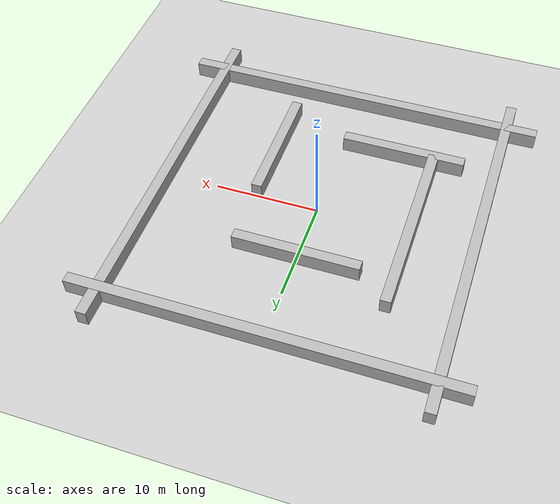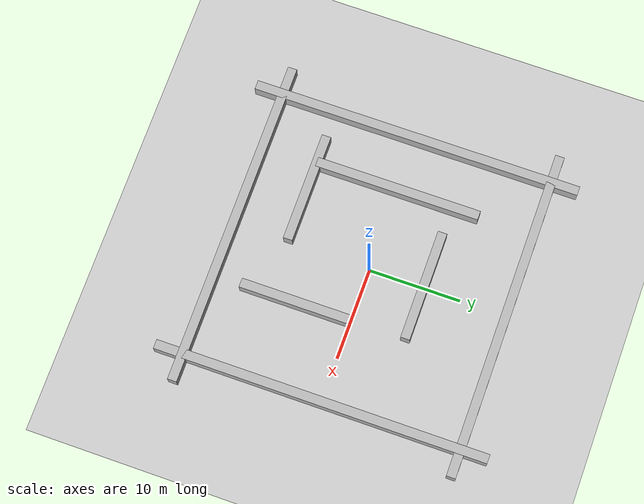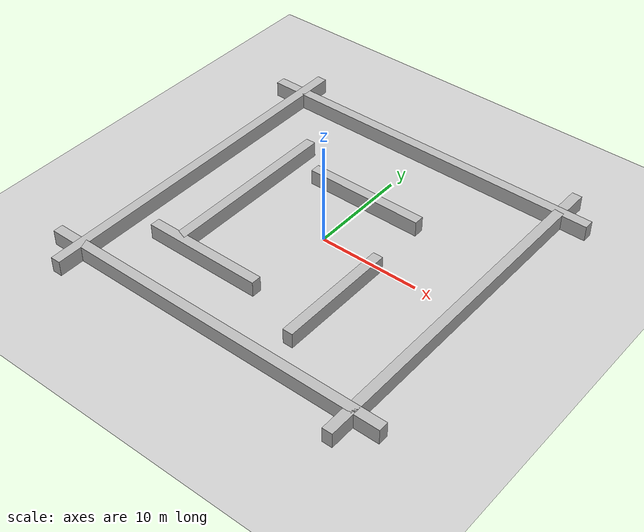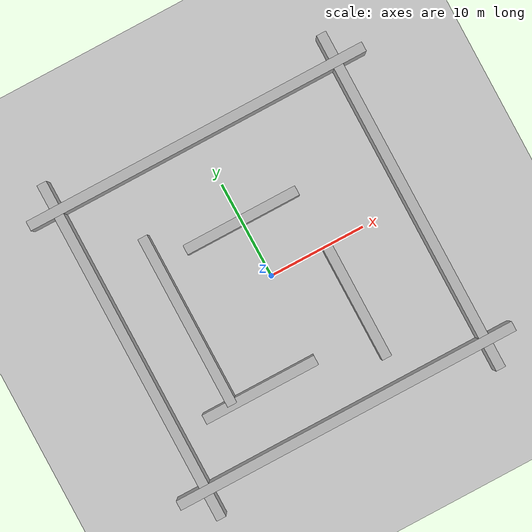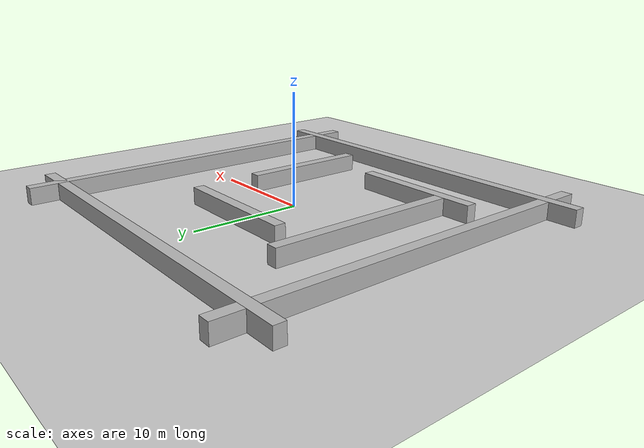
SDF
<sdf version="1.8">
 <world name="demo">
  <plugin filename="gz-sim-physics-system" name="gz::sim::systems::Physics"/>
  <plugin filename="gz-sim-sensors-system" name="gz::sim::systems::Sensors">
   <render_engine>ogre2</render_engine>
  </plugin>
  <plugin filename="gz-sim-scene-broadcaster-system" name="gz::sim::systems::SceneBroadcaster"/>
  <plugin filename="gz-sim-user-commands-system" name="gz::sim::systems::UserCommands"/>
  <plugin filename="BasicSystem" name="robot_gazebo::BasicSystem"/>
  <plugin filename="FullSystem" name="robot_gazebo::FullSystem"/>
  <light name="sun" type="directional">
   <pose>0 0 10 0 0 0</pose>
   <diffuse>0.8 0.8 0.8 1</diffuse>
   <specular>0.2 0.2 0.2 1</specular>
   <attenuation>
    <range>1000</range>
    <constant>0.9</constant>
    <linear>0.01</linear>
    <quadratic>0.001</quadratic>
   </attenuation>
   <direction>-0.5 0.1 -0.9</direction>
  </light>
  <model name="ground_plane">
   <static>true</static>
   <link name="link">
    <collision name="collision">
     <geometry><plane><normal>0 0 1</normal><size>100 100</size></plane></geometry>
    </collision>
    <visual name="visual">
     <geometry><plane><normal>0 0 1</normal><size>100 100</size></plane></geometry>
     <material>
      <ambient>0.8 0.8 0.8 1</ambient>
      <diffuse>0.8 0.8 0.8 1</diffuse>
      <specular>0.8 0.8 0.8 1</specular>
     </material>
    </visual>
   </link>
  </model>
  <model name="maze">
   <static>true</static>
   <link name="wall_north">
    <pose>0 15 0 0 0 0</pose>
    <visual name="wall_north_visual"><geometry><box><size>36 1 3</size></box></geometry></visual>
    <collision name="wall_north_collision"><geometry><box><size>36 1 3</size></box></geometry></collision>
   </link>
   <link name="wall_south">
    <pose>0 -15 0 0 0 0</pose>
    <visual name="wall_south_visual"><geometry><box><size>36 1 3</size></box></geometry></visual>
    <collision name="wall_south_collision"><geometry><box><size>36 1 3</size></box></geometry></collision>
   </link>
   <link name="wall_east">
    <pose>15 0 0 0 0 0</pose>
    <visual name="wall_east_visual"><geometry><box><size>1 36 3</size></box></geometry></visual>
    <collision name="wall_east_collision"><geometry><box><size>1 36 3</size></box></geometry></collision>
   </link>
   <link name="wall_west">
    <pose>-15 0 0 0 0 0</pose>
    <visual name="wall_west_visual"><geometry><box><size>1 36 3</size></box></geometry></visual>
    <collision name="wall_west_collision"><geometry><box><size>1 36 3</size></box></geometry></collision>
   </link>
   <link name="wall1">
    <pose>-9 0 0 0 0 0</pose>
    <visual name="wall1_visual"><geometry><box><size>1 18 3</size></box></geometry></visual>
    <collision name="wall1_collision"><geometry><box><size>1 18 3</size></box></geometry></collision>
   </link>
   <link name="wall2">
    <pose>0 6 0 0 0 0</pose>
    <visual name="wall2_visual"><geometry><box><size>12 1 3</size></box></geometry></visual>
    <collision name="wall2_collision"><geometry><box><size>12 1 3</size></box></geometry></collision>
   </link>
   <link name="wall3">
    <pose>6 -6 0 0 0 0</pose>
    <visual name="wall3_visual"><geometry><box><size>1 12 3</size></box></geometry></visual>
    <collision name="wall3_collision"><geometry><box><size>1 12 3</size></box></geometry></collision>
   </link>
   <link name="wall4">
    <pose>-6 -9 0 0 0 0</pose>
    <visual name="wall4_visual"><geometry><box><size>12 1 3</size></box></geometry></visual>
    <collision name="wall4_collision"><geometry><box><size>12 1 3</size></box></geometry></collision>
   </link>
  </model>
 </world>
</sdf>
